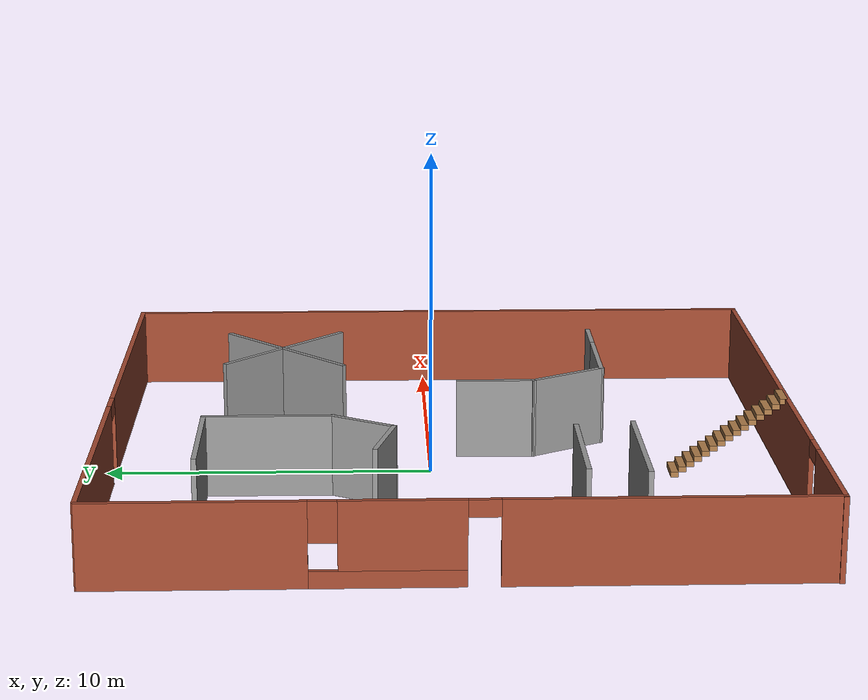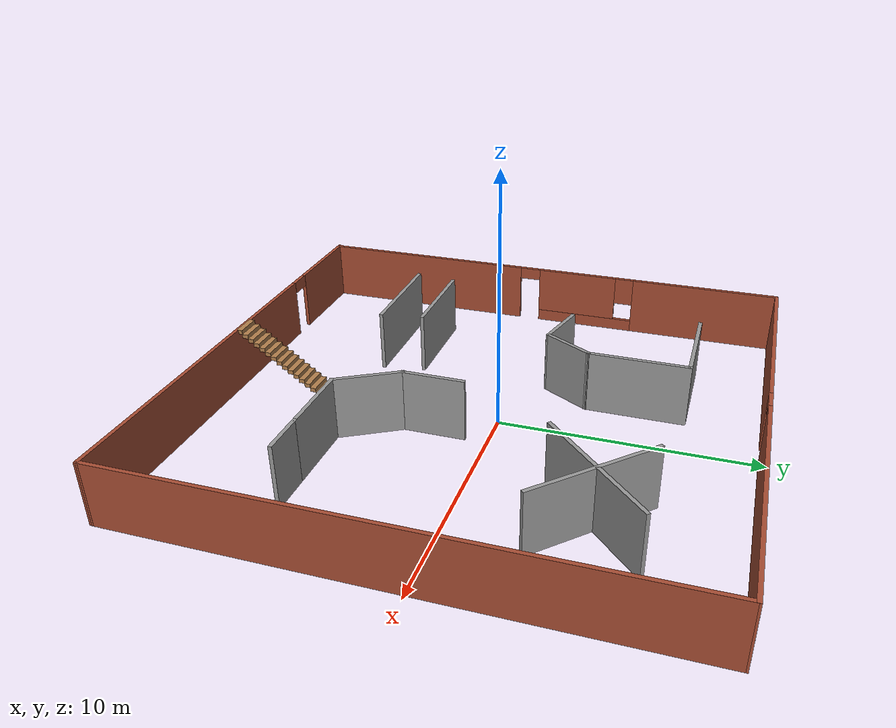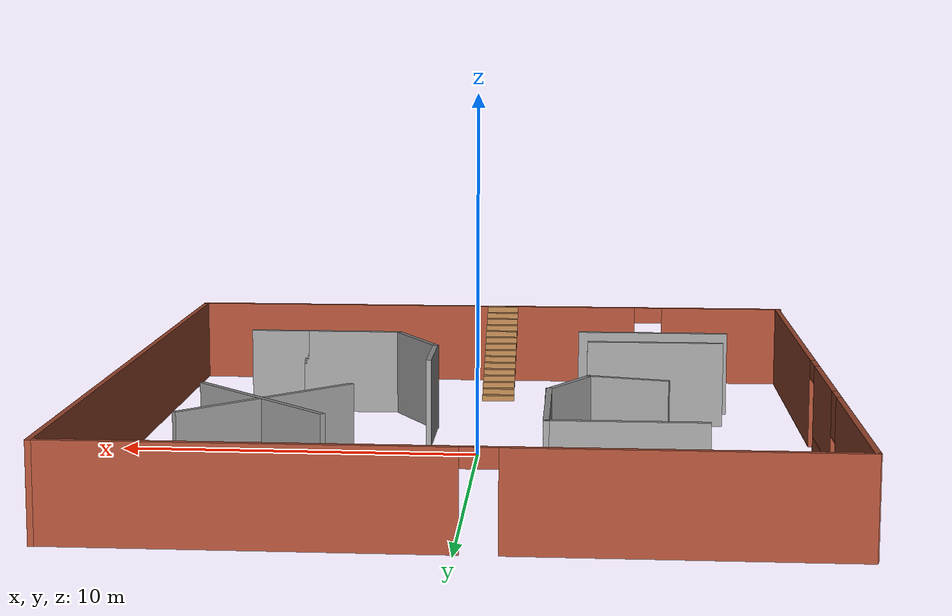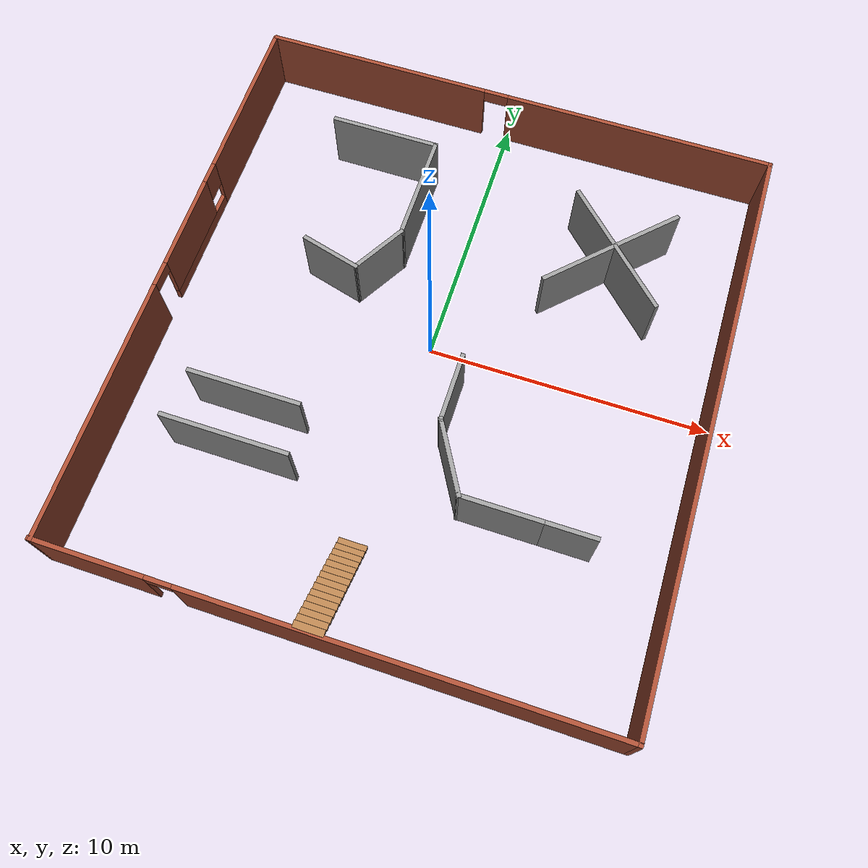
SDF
<?xml version='1.0'?>
<sdf version='1.7'>
  <model name='model1'>
    <pose>0.187595 -0.569101 0 0 -0 0</pose>
    <link name='Stairs_0'>
      <visual name='Stairs_0_Visual_0'>
        <pose>-0.40837 -6.93393 0.083333 0 -0 0</pose>
        <geometry>
          <box>
            <size>1 0.233333 0.166667</size>
          </box>
        </geometry>
        <material>
          <script>
            <uri>file://media/materials/scripts/gazebo.material</uri>
            <name>Gazebo/Wood</name>
          </script>
          <ambient>1 1 1 1</ambient>
        </material>
        <meta>
          <layer>0</layer>
        </meta>
      </visual>
      <collision name='Stairs_0_Collision_0'>
        <geometry>
          <box>
            <size>1 0.233333 0.166667</size>
          </box>
        </geometry>
        <pose>-0.40837 -6.93393 0.083333 0 -0 0</pose>
      </collision>
      <visual name='Stairs_0_Visual_1'>
        <pose>-0.40837 -7.16726 0.25 0 -0 0</pose>
        <geometry>
          <box>
            <size>1 0.233333 0.166667</size>
          </box>
        </geometry>
        <material>
          <script>
            <uri>file://media/materials/scripts/gazebo.material</uri>
            <name>Gazebo/Wood</name>
          </script>
          <ambient>1 1 1 1</ambient>
        </material>
        <meta>
          <layer>0</layer>
        </meta>
      </visual>
      <collision name='Stairs_0_Collision_1'>
        <geometry>
          <box>
            <size>1 0.233333 0.166667</size>
          </box>
        </geometry>
        <pose>-0.40837 -7.16726 0.25 0 -0 0</pose>
      </collision>
      <visual name='Stairs_0_Visual_2'>
        <pose>-0.40837 -7.4006 0.416667 0 -0 0</pose>
        <geometry>
          <box>
            <size>1 0.233333 0.166667</size>
          </box>
        </geometry>
        <material>
          <script>
            <uri>file://media/materials/scripts/gazebo.material</uri>
            <name>Gazebo/Wood</name>
          </script>
          <ambient>1 1 1 1</ambient>
        </material>
        <meta>
          <layer>0</layer>
        </meta>
      </visual>
      <collision name='Stairs_0_Collision_2'>
        <geometry>
          <box>
            <size>1 0.233333 0.166667</size>
          </box>
        </geometry>
        <pose>-0.40837 -7.4006 0.416667 0 -0 0</pose>
      </collision>
      <visual name='Stairs_0_Visual_3'>
        <pose>-0.40837 -7.63393 0.583333 0 -0 0</pose>
        <geometry>
          <box>
            <size>1 0.233333 0.166667</size>
          </box>
        </geometry>
        <material>
          <script>
            <uri>file://media/materials/scripts/gazebo.material</uri>
            <name>Gazebo/Wood</name>
          </script>
          <ambient>1 1 1 1</ambient>
        </material>
        <meta>
          <layer>0</layer>
        </meta>
      </visual>
      <collision name='Stairs_0_Collision_3'>
        <geometry>
          <box>
            <size>1 0.233333 0.166667</size>
          </box>
        </geometry>
        <pose>-0.40837 -7.63393 0.583333 0 -0 0</pose>
      </collision>
      <visual name='Stairs_0_Visual_4'>
        <pose>-0.40837 -7.86726 0.75 0 -0 0</pose>
        <geometry>
          <box>
            <size>1 0.233333 0.166667</size>
          </box>
        </geometry>
        <material>
          <script>
            <uri>file://media/materials/scripts/gazebo.material</uri>
            <name>Gazebo/Wood</name>
          </script>
          <ambient>1 1 1 1</ambient>
        </material>
        <meta>
          <layer>0</layer>
        </meta>
      </visual>
      <collision name='Stairs_0_Collision_4'>
        <geometry>
          <box>
            <size>1 0.233333 0.166667</size>
          </box>
        </geometry>
        <pose>-0.40837 -7.86726 0.75 0 -0 0</pose>
      </collision>
      <visual name='Stairs_0_Visual_5'>
        <pose>-0.40837 -8.1006 0.916667 0 -0 0</pose>
        <geometry>
          <box>
            <size>1 0.233333 0.166667</size>
          </box>
        </geometry>
        <material>
          <script>
            <uri>file://media/materials/scripts/gazebo.material</uri>
            <name>Gazebo/Wood</name>
          </script>
          <ambient>1 1 1 1</ambient>
        </material>
        <meta>
          <layer>0</layer>
        </meta>
      </visual>
      <collision name='Stairs_0_Collision_5'>
        <geometry>
          <box>
            <size>1 0.233333 0.166667</size>
          </box>
        </geometry>
        <pose>-0.40837 -8.1006 0.916667 0 -0 0</pose>
      </collision>
      <visual name='Stairs_0_Visual_6'>
        <pose>-0.40837 -8.33393 1.08333 0 -0 0</pose>
        <geometry>
          <box>
            <size>1 0.233333 0.166667</size>
          </box>
        </geometry>
        <material>
          <script>
            <uri>file://media/materials/scripts/gazebo.material</uri>
            <name>Gazebo/Wood</name>
          </script>
          <ambient>1 1 1 1</ambient>
        </material>
        <meta>
          <layer>0</layer>
        </meta>
      </visual>
      <collision name='Stairs_0_Collision_6'>
        <geometry>
          <box>
            <size>1 0.233333 0.166667</size>
          </box>
        </geometry>
        <pose>-0.40837 -8.33393 1.08333 0 -0 0</pose>
      </collision>
      <visual name='Stairs_0_Visual_7'>
        <pose>-0.40837 -8.56726 1.25 0 -0 0</pose>
        <geometry>
          <box>
            <size>1 0.233333 0.166667</size>
          </box>
        </geometry>
        <material>
          <script>
            <uri>file://media/materials/scripts/gazebo.material</uri>
            <name>Gazebo/Wood</name>
          </script>
          <ambient>1 1 1 1</ambient>
        </material>
        <meta>
          <layer>0</layer>
        </meta>
      </visual>
      <collision name='Stairs_0_Collision_7'>
        <geometry>
          <box>
            <size>1 0.233333 0.166667</size>
          </box>
        </geometry>
        <pose>-0.40837 -8.56726 1.25 0 -0 0</pose>
      </collision>
      <visual name='Stairs_0_Visual_8'>
        <pose>-0.40837 -8.8006 1.41667 0 -0 0</pose>
        <geometry>
          <box>
            <size>1 0.233333 0.166667</size>
          </box>
        </geometry>
        <material>
          <script>
            <uri>file://media/materials/scripts/gazebo.material</uri>
            <name>Gazebo/Wood</name>
          </script>
          <ambient>1 1 1 1</ambient>
        </material>
        <meta>
          <layer>0</layer>
        </meta>
      </visual>
      <collision name='Stairs_0_Collision_8'>
        <geometry>
          <box>
            <size>1 0.233333 0.166667</size>
          </box>
        </geometry>
        <pose>-0.40837 -8.8006 1.41667 0 -0 0</pose>
      </collision>
      <visual name='Stairs_0_Visual_9'>
        <pose>-0.40837 -9.03393 1.58333 0 -0 0</pose>
        <geometry>
          <box>
            <size>1 0.233333 0.166667</size>
          </box>
        </geometry>
        <material>
          <script>
            <uri>file://media/materials/scripts/gazebo.material</uri>
            <name>Gazebo/Wood</name>
          </script>
          <ambient>1 1 1 1</ambient>
        </material>
        <meta>
          <layer>0</layer>
        </meta>
      </visual>
      <collision name='Stairs_0_Collision_9'>
        <geometry>
          <box>
            <size>1 0.233333 0.166667</size>
          </box>
        </geometry>
        <pose>-0.40837 -9.03393 1.58333 0 -0 0</pose>
      </collision>
      <visual name='Stairs_0_Visual_10'>
        <pose>-0.40837 -9.26726 1.75 0 -0 0</pose>
        <geometry>
          <box>
            <size>1 0.233333 0.166667</size>
          </box>
        </geometry>
        <material>
          <script>
            <uri>file://media/materials/scripts/gazebo.material</uri>
            <name>Gazebo/Wood</name>
          </script>
          <ambient>1 1 1 1</ambient>
        </material>
        <meta>
          <layer>0</layer>
        </meta>
      </visual>
      <collision name='Stairs_0_Collision_10'>
        <geometry>
          <box>
            <size>1 0.233333 0.166667</size>
          </box>
        </geometry>
        <pose>-0.40837 -9.26726 1.75 0 -0 0</pose>
      </collision>
      <visual name='Stairs_0_Visual_11'>
        <pose>-0.40837 -9.5006 1.91667 0 -0 0</pose>
        <geometry>
          <box>
            <size>1 0.233333 0.166667</size>
          </box>
        </geometry>
        <material>
          <script>
            <uri>file://media/materials/scripts/gazebo.material</uri>
            <name>Gazebo/Wood</name>
          </script>
          <ambient>1 1 1 1</ambient>
        </material>
        <meta>
          <layer>0</layer>
        </meta>
      </visual>
      <collision name='Stairs_0_Collision_11'>
        <geometry>
          <box>
            <size>1 0.233333 0.166667</size>
          </box>
        </geometry>
        <pose>-0.40837 -9.5006 1.91667 0 -0 0</pose>
      </collision>
      <visual name='Stairs_0_Visual_12'>
        <pose>-0.40837 -9.73393 2.08333 0 -0 0</pose>
        <geometry>
          <box>
            <size>1 0.233333 0.166667</size>
          </box>
        </geometry>
        <material>
          <script>
            <uri>file://media/materials/scripts/gazebo.material</uri>
            <name>Gazebo/Wood</name>
          </script>
          <ambient>1 1 1 1</ambient>
        </material>
        <meta>
          <layer>0</layer>
        </meta>
      </visual>
      <collision name='Stairs_0_Collision_12'>
        <geometry>
          <box>
            <size>1 0.233333 0.166667</size>
          </box>
        </geometry>
        <pose>-0.40837 -9.73393 2.08333 0 -0 0</pose>
      </collision>
      <visual name='Stairs_0_Visual_13'>
        <pose>-0.40837 -9.96726 2.25 0 -0 0</pose>
        <geometry>
          <box>
            <size>1 0.233333 0.166667</size>
          </box>
        </geometry>
        <material>
          <script>
            <uri>file://media/materials/scripts/gazebo.material</uri>
            <name>Gazebo/Wood</name>
          </script>
          <ambient>1 1 1 1</ambient>
        </material>
        <meta>
          <layer>0</layer>
        </meta>
      </visual>
      <collision name='Stairs_0_Collision_13'>
        <geometry>
          <box>
            <size>1 0.233333 0.166667</size>
          </box>
        </geometry>
        <pose>-0.40837 -9.96726 2.25 0 -0 0</pose>
      </collision>
      <visual name='Stairs_0_Visual_14'>
        <pose>-0.40837 -10.2006 2.41667 0 -0 0</pose>
        <geometry>
          <box>
            <size>1 0.233333 0.166667</size>
          </box>
        </geometry>
        <material>
          <script>
            <uri>file://media/materials/scripts/gazebo.material</uri>
            <name>Gazebo/Wood</name>
          </script>
          <ambient>1 1 1 1</ambient>
        </material>
        <meta>
          <layer>0</layer>
        </meta>
      </visual>
      <collision name='Stairs_0_Collision_14'>
        <geometry>
          <box>
            <size>1 0.233333 0.166667</size>
          </box>
        </geometry>
        <pose>-0.40837 -10.2006 2.41667 0 -0 0</pose>
      </collision>
    </link>
    <link name='Wall_11'>
      <pose>-9.52744 -0.018475 0 0 -0 -1.56352</pose>
      <visual name='Wall_11_Visual_0'>
        <pose>-7.25835 0 1.25 0 -0 0</pose>
        <geometry>
          <box>
            <size>6.23329 0.15 2.5</size>
          </box>
        </geometry>
        <material>
          <script>
            <uri>file://media/materials/scripts/gazebo.material</uri>
            <name>Gazebo/Bricks</name>
          </script>
          <ambient>1 1 1 1</ambient>
        </material>
        <meta>
          <layer>0</layer>
        </meta>
      </visual>
      <collision name='Wall_11_Collision_0'>
        <geometry>
          <box>
            <size>6.23329 0.15 2.5</size>
          </box>
        </geometry>
        <pose>-7.25835 0 1.25 0 -0 0</pose>
      </collision>
      <visual name='Wall_11_Visual_1'>
        <pose>5.71686 0 1.25 0 -0 0</pose>
        <geometry>
          <box>
            <size>9.31628 0.15 2.5</size>
          </box>
        </geometry>
        <material>
          <script>
            <uri>file://media/materials/scripts/gazebo.material</uri>
            <name>Gazebo/Bricks</name>
          </script>
          <ambient>1 1 1 1</ambient>
        </material>
        <meta>
          <layer>0</layer>
        </meta>
      </visual>
      <collision name='Wall_11_Collision_1'>
        <geometry>
          <box>
            <size>9.31628 0.15 2.5</size>
          </box>
        </geometry>
        <pose>5.71686 0 1.25 0 -0 0</pose>
      </collision>
      <visual name='Wall_11_Visual_2'>
        <pose>-1.99149 0 0.25 0 -0 0</pose>
        <geometry>
          <box>
            <size>4.30043 0.15 0.5</size>
          </box>
        </geometry>
        <material>
          <script>
            <uri>file://media/materials/scripts/gazebo.material</uri>
            <name>Gazebo/Bricks</name>
          </script>
          <ambient>1 1 1 1</ambient>
        </material>
        <meta>
          <layer>0</layer>
        </meta>
      </visual>
      <collision name='Wall_11_Collision_2'>
        <geometry>
          <box>
            <size>4.30043 0.15 0.5</size>
          </box>
        </geometry>
        <pose>-1.99149 0 0.25 0 -0 0</pose>
      </collision>
      <visual name='Wall_11_Visual_3'>
        <pose>-1.59149 0 1.5 0 -0 0</pose>
        <geometry>
          <box>
            <size>3.50043 0.15 2</size>
          </box>
        </geometry>
        <material>
          <script>
            <uri>file://media/materials/scripts/gazebo.material</uri>
            <name>Gazebo/Bricks</name>
          </script>
          <ambient>1 1 1 1</ambient>
        </material>
        <meta>
          <layer>0</layer>
        </meta>
      </visual>
      <collision name='Wall_11_Collision_3'>
        <geometry>
          <box>
            <size>3.50043 0.15 2</size>
          </box>
        </geometry>
        <pose>-1.59149 0 1.5 0 -0 0</pose>
      </collision>
      <visual name='Wall_11_Visual_4'>
        <pose>-3.74171 0 1.9 0 -0 0</pose>
        <geometry>
          <box>
            <size>0.8 0.15 1.2</size>
          </box>
        </geometry>
        <material>
          <script>
            <uri>file://media/materials/scripts/gazebo.material</uri>
            <name>Gazebo/Bricks</name>
          </script>
          <ambient>1 1 1 1</ambient>
        </material>
        <meta>
          <layer>0</layer>
        </meta>
      </visual>
      <collision name='Wall_11_Collision_4'>
        <geometry>
          <box>
            <size>0.8 0.15 1.2</size>
          </box>
        </geometry>
        <pose>-3.74171 0 1.9 0 -0 0</pose>
      </collision>
      <visual name='Wall_11_Visual_5'>
        <pose>0.608723 0 2.25 0 -0 0</pose>
        <geometry>
          <box>
            <size>0.9 0.15 0.5</size>
          </box>
        </geometry>
        <material>
          <script>
            <uri>file://media/materials/scripts/gazebo.material</uri>
            <name>Gazebo/Bricks</name>
          </script>
          <ambient>1 1 1 1</ambient>
        </material>
        <meta>
          <layer>0</layer>
        </meta>
      </visual>
      <collision name='Wall_11_Collision_5'>
        <geometry>
          <box>
            <size>0.9 0.15 0.5</size>
          </box>
        </geometry>
        <pose>0.608723 0 2.25 0 -0 0</pose>
      </collision>
    </link>
    <link name='Wall_12'>
      <pose>0.05265 -10.3185 0 0 -0 0</pose>
      <visual name='Wall_12_Visual_0'>
        <pose>-7.6679 0 1.25 0 -0 0</pose>
        <geometry>
          <box>
            <size>3.9142 0.15 2.5</size>
          </box>
        </geometry>
        <material>
          <script>
            <uri>file://media/materials/scripts/gazebo.material</uri>
            <name>Gazebo/Bricks</name>
          </script>
          <ambient>1 1 1 1</ambient>
        </material>
        <meta>
          <layer>0</layer>
        </meta>
      </visual>
      <collision name='Wall_12_Collision_0'>
        <geometry>
          <box>
            <size>3.9142 0.15 2.5</size>
          </box>
        </geometry>
        <pose>-7.6679 0 1.25 0 -0 0</pose>
      </collision>
      <visual name='Wall_12_Visual_1'>
        <pose>2.4071 0 1.25 0 -0 0</pose>
        <geometry>
          <box>
            <size>14.4358 0.15 2.5</size>
          </box>
        </geometry>
        <material>
          <script>
            <uri>file://media/materials/scripts/gazebo.material</uri>
            <name>Gazebo/Bricks</name>
          </script>
          <ambient>1 1 1 1</ambient>
        </material>
        <meta>
          <layer>0</layer>
        </meta>
      </visual>
      <collision name='Wall_12_Collision_1'>
        <geometry>
          <box>
            <size>14.4358 0.15 2.5</size>
          </box>
        </geometry>
        <pose>2.4071 0 1.25 0 -0 0</pose>
      </collision>
      <visual name='Wall_12_Visual_2'>
        <pose>-5.2608 0 2.25 0 -0 0</pose>
        <geometry>
          <box>
            <size>0.9 0.15 0.5</size>
          </box>
        </geometry>
        <material>
          <script>
            <uri>file://media/materials/scripts/gazebo.material</uri>
            <name>Gazebo/Bricks</name>
          </script>
          <ambient>1 1 1 1</ambient>
        </material>
        <meta>
          <layer>0</layer>
        </meta>
      </visual>
      <collision name='Wall_12_Collision_2'>
        <geometry>
          <box>
            <size>0.9 0.15 0.5</size>
          </box>
        </geometry>
        <pose>-5.2608 0 2.25 0 -0 0</pose>
      </collision>
    </link>
    <link name='Wall_13'>
      <collision name='Wall_13_Collision'>
        <geometry>
          <box>
            <size>20.7877 0.15 2.5</size>
          </box>
        </geometry>
        <pose>0 0 1.25 0 -0 0</pose>
      </collision>
      <visual name='Wall_13_Visual'>
        <pose>0 0 1.25 0 -0 0</pose>
        <geometry>
          <box>
            <size>20.7877 0.15 2.5</size>
          </box>
        </geometry>
        <material>
          <script>
            <uri>file://media/materials/scripts/gazebo.material</uri>
            <name>Gazebo/Bricks</name>
          </script>
          <ambient>1 1 1 1</ambient>
        </material>
        <meta>
          <layer>0</layer>
        </meta>
      </visual>
      <pose>9.56505 0 0 0 -0 1.57444</pose>
    </link>
    <link name='Wall_14'>
      <pose>-0.02255 10.3185 0 0 -0 3.14159</pose>
      <visual name='Wall_14_Visual_0'>
        <pose>-4.66516 0 1.25 0 -0 0</pose>
        <geometry>
          <box>
            <size>9.91968 0.15 2.5</size>
          </box>
        </geometry>
        <material>
          <script>
            <uri>file://media/materials/scripts/gazebo.material</uri>
            <name>Gazebo/Bricks</name>
          </script>
          <ambient>1 1 1 1</ambient>
        </material>
        <meta>
          <layer>0</layer>
        </meta>
      </visual>
      <collision name='Wall_14_Collision_0'>
        <geometry>
          <box>
            <size>9.91968 0.15 2.5</size>
          </box>
        </geometry>
        <pose>-4.66516 0 1.25 0 -0 0</pose>
      </collision>
      <visual name='Wall_14_Visual_1'>
        <pose>5.40984 0 1.25 0 -0 0</pose>
        <geometry>
          <box>
            <size>8.43032 0.15 2.5</size>
          </box>
        </geometry>
        <material>
          <script>
            <uri>file://media/materials/scripts/gazebo.material</uri>
            <name>Gazebo/Bricks</name>
          </script>
          <ambient>1 1 1 1</ambient>
        </material>
        <meta>
          <layer>0</layer>
        </meta>
      </visual>
      <collision name='Wall_14_Collision_1'>
        <geometry>
          <box>
            <size>8.43032 0.15 2.5</size>
          </box>
        </geometry>
        <pose>5.40984 0 1.25 0 -0 0</pose>
      </collision>
      <visual name='Wall_14_Visual_2'>
        <pose>0.744683 0 2.25 0 -0 0</pose>
        <geometry>
          <box>
            <size>0.9 0.15 0.5</size>
          </box>
        </geometry>
        <material>
          <script>
            <uri>file://media/materials/scripts/gazebo.material</uri>
            <name>Gazebo/Bricks</name>
          </script>
          <ambient>1 1 1 1</ambient>
        </material>
        <meta>
          <layer>0</layer>
        </meta>
      </visual>
      <collision name='Wall_14_Collision_2'>
        <geometry>
          <box>
            <size>0.9 0.15 0.5</size>
          </box>
        </geometry>
        <pose>0.744683 0 2.25 0 -0 0</pose>
      </collision>
    </link>
    <link name='Wall_16'>
      <collision name='Wall_16_Collision'>
        <geometry>
          <box>
            <size>4 0.15 2.5</size>
          </box>
        </geometry>
        <pose>0 0 1.25 0 -0 0</pose>
      </collision>
      <visual name='Wall_16_Visual'>
        <pose>0 0 1.25 0 -0 0</pose>
        <geometry>
          <box>
            <size>4 0.15 2.5</size>
          </box>
        </geometry>
        <material>
          <script>
            <uri>file://media/materials/scripts/gazebo.material</uri>
            <name>Gazebo/Grey</name>
          </script>
          <ambient>1 1 1 1</ambient>
        </material>
        <meta>
          <layer>0</layer>
        </meta>
      </visual>
      <pose>-4.13544 7.40208 0 0 -0 0</pose>
    </link>
    <link name='Wall_17'>
      <collision name='Wall_17_Collision'>
        <geometry>
          <box>
            <size>4 0.15 2.5</size>
          </box>
        </geometry>
        <pose>0 0 1.25 0 -0 0</pose>
      </collision>
      <visual name='Wall_17_Visual'>
        <pose>0 0 1.25 0 -0 0</pose>
        <geometry>
          <box>
            <size>4 0.15 2.5</size>
          </box>
        </geometry>
        <material>
          <script>
            <uri>file://media/materials/scripts/gazebo.material</uri>
            <name>Gazebo/Grey</name>
          </script>
          <ambient>1 1 1 1</ambient>
        </material>
        <meta>
          <layer>0</layer>
        </meta>
      </visual>
      <pose>-2.21044 5.47708 0 0 -0 -1.5708</pose>
    </link>
    <link name='Wall_18'>
      <collision name='Wall_18_Collision'>
        <geometry>
          <box>
            <size>2.25 0.15 2.5</size>
          </box>
        </geometry>
        <pose>0 0 1.25 0 -0 0</pose>
      </collision>
      <visual name='Wall_18_Visual'>
        <pose>0 0 1.25 0 -0 0</pose>
        <geometry>
          <box>
            <size>2.25 0.15 2.5</size>
          </box>
        </geometry>
        <material>
          <script>
            <uri>file://media/materials/scripts/gazebo.material</uri>
            <name>Gazebo/Grey</name>
          </script>
          <ambient>1 1 1 1</ambient>
        </material>
        <meta>
          <layer>0</layer>
        </meta>
      </visual>
      <pose>-2.73544 2.64276 0 0 -0 -2.0944</pose>
    </link>
    <link name='Wall_19'>
      <collision name='Wall_19_Collision'>
        <geometry>
          <box>
            <size>2.25 0.15 2.5</size>
          </box>
        </geometry>
        <pose>0 0 1.25 0 -0 0</pose>
      </collision>
      <visual name='Wall_19_Visual'>
        <pose>0 0 1.25 0 -0 0</pose>
        <geometry>
          <box>
            <size>2.25 0.15 2.5</size>
          </box>
        </geometry>
        <material>
          <script>
            <uri>file://media/materials/scripts/gazebo.material</uri>
            <name>Gazebo/Grey</name>
          </script>
          <ambient>1 1 1 1</ambient>
        </material>
        <meta>
          <layer>0</layer>
        </meta>
      </visual>
      <pose>-4.27466 2.00519 0 0 -0 2.87979</pose>
    </link>
    <link name='Wall_21'>
      <collision name='Wall_21_Collision'>
        <geometry>
          <box>
            <size>2.5 0.15 2.5</size>
          </box>
        </geometry>
        <pose>0 0 1.25 0 -0 0</pose>
      </collision>
      <visual name='Wall_21_Visual'>
        <pose>0 0 1.25 0 -0 0</pose>
        <geometry>
          <box>
            <size>2.5 0.15 2.5</size>
          </box>
        </geometry>
        <material>
          <script>
            <uri>file://media/materials/scripts/gazebo.material</uri>
            <name>Gazebo/Grey</name>
          </script>
          <ambient>1 1 1 1</ambient>
        </material>
        <meta>
          <layer>0</layer>
        </meta>
      </visual>
      <pose>1.25137 -1.5333 0 0 -0 -1.5708</pose>
    </link>
    <link name='Wall_22'>
      <collision name='Wall_22_Collision'>
        <geometry>
          <box>
            <size>2.75 0.15 2.5</size>
          </box>
        </geometry>
        <pose>0 0 1.25 0 -0 0</pose>
      </collision>
      <visual name='Wall_22_Visual'>
        <pose>0 0 1.25 0 -0 0</pose>
        <geometry>
          <box>
            <size>2.75 0.15 2.5</size>
          </box>
        </geometry>
        <material>
          <script>
            <uri>file://media/materials/scripts/gazebo.material</uri>
            <name>Gazebo/Grey</name>
          </script>
          <ambient>1 1 1 1</ambient>
        </material>
        <meta>
          <layer>0</layer>
        </meta>
      </visual>
      <pose>1.90136 -3.83413 0 0 -0 -1.0472</pose>
    </link>
    <link name='Wall_23'>
      <collision name='Wall_23_Collision'>
        <geometry>
          <box>
            <size>3 0.15 2.5</size>
          </box>
        </geometry>
        <pose>0 0 1.25 0 -0 0</pose>
      </collision>
      <visual name='Wall_23_Visual'>
        <pose>0 0 1.25 0 -0 0</pose>
        <geometry>
          <box>
            <size>3 0.15 2.5</size>
          </box>
        </geometry>
        <material>
          <script>
            <uri>file://media/materials/scripts/gazebo.material</uri>
            <name>Gazebo/Grey</name>
          </script>
          <ambient>1 1 1 1</ambient>
        </material>
        <meta>
          <layer>0</layer>
        </meta>
      </visual>
      <pose>3.97636 -4.95997 0 0 -0 0</pose>
    </link>
    <link name='Wall_24'>
      <collision name='Wall_24_Collision'>
        <geometry>
          <box>
            <size>1.75 0.15 2.5</size>
          </box>
        </geometry>
        <pose>0 0 1.25 0 -0 0</pose>
      </collision>
      <visual name='Wall_24_Visual'>
        <pose>0 0 1.25 0 -0 0</pose>
        <geometry>
          <box>
            <size>1.75 0.15 2.5</size>
          </box>
        </geometry>
        <material>
          <script>
            <uri>file://media/materials/scripts/gazebo.material</uri>
            <name>Gazebo/Grey</name>
          </script>
          <ambient>1 1 1 1</ambient>
        </material>
        <meta>
          <layer>0</layer>
        </meta>
      </visual>
      <pose>6.20137 -4.95997 0 0 -0 0</pose>
    </link>
    <link name='Wall_27'>
      <collision name='Wall_27_Collision'>
        <geometry>
          <box>
            <size>4.5 0.15 2.5</size>
          </box>
        </geometry>
        <pose>0 0 1.25 0 -0 0</pose>
      </collision>
      <visual name='Wall_27_Visual'>
        <pose>0 0 1.25 0 -0 0</pose>
        <geometry>
          <box>
            <size>4.5 0.15 2.5</size>
          </box>
        </geometry>
        <material>
          <script>
            <uri>file://media/materials/scripts/gazebo.material</uri>
            <name>Gazebo/Grey</name>
          </script>
          <ambient>1 1 1 1</ambient>
        </material>
        <meta>
          <layer>0</layer>
        </meta>
      </visual>
      <pose>-5.18632 -5.33751 0 0 -0 0</pose>
    </link>
    <link name='Wall_29'>
      <collision name='Wall_29_Collision'>
        <geometry>
          <box>
            <size>4 0.15 2.5</size>
          </box>
        </geometry>
        <pose>0 0 1.25 0 -0 0</pose>
      </collision>
      <visual name='Wall_29_Visual'>
        <pose>0 0 1.25 0 -0 0</pose>
        <geometry>
          <box>
            <size>4 0.15 2.5</size>
          </box>
        </geometry>
        <material>
          <script>
            <uri>file://media/materials/scripts/gazebo.material</uri>
            <name>Gazebo/Grey</name>
          </script>
          <ambient>1 1 1 1</ambient>
        </material>
        <meta>
          <layer>0</layer>
        </meta>
      </visual>
      <pose>-5.20426 -3.63291 0 0 -0 3.14159</pose>
    </link>
    <link name='Wall_31'>
      <collision name='Wall_31_Collision'>
        <geometry>
          <box>
            <size>5.25 0.15 2.5</size>
          </box>
        </geometry>
        <pose>0 0 1.25 0 -0 0</pose>
      </collision>
      <visual name='Wall_31_Visual'>
        <pose>0 0 1.25 0 -0 0</pose>
        <geometry>
          <box>
            <size>5.25 0.15 2.5</size>
          </box>
        </geometry>
        <material>
          <script>
            <uri>file://media/materials/scripts/gazebo.material</uri>
            <name>Gazebo/Grey</name>
          </script>
          <ambient>1 1 1 1</ambient>
        </material>
        <meta>
          <layer>0</layer>
        </meta>
      </visual>
      <pose>5.07308 5.2401 0 0 -0 -0.785398</pose>
    </link>
    <link name='Wall_34'>
      <collision name='Wall_34_Collision'>
        <geometry>
          <box>
            <size>5.5 0.15 2.5</size>
          </box>
        </geometry>
        <pose>0 0 1.25 0 -0 0</pose>
      </collision>
      <visual name='Wall_34_Visual'>
        <pose>0 0 1.25 0 -0 0</pose>
        <geometry>
          <box>
            <size>5.5 0.15 2.5</size>
          </box>
        </geometry>
        <material>
          <script>
            <uri>file://media/materials/scripts/gazebo.material</uri>
            <name>Gazebo/Grey</name>
          </script>
          <ambient>1 1 1 1</ambient>
        </material>
        <meta>
          <layer>0</layer>
        </meta>
      </visual>
      <pose>4.92221 5.19657 0 0 -0 -2.35619</pose>
    </link>
    <static>1</static>
  </model>
</sdf>
